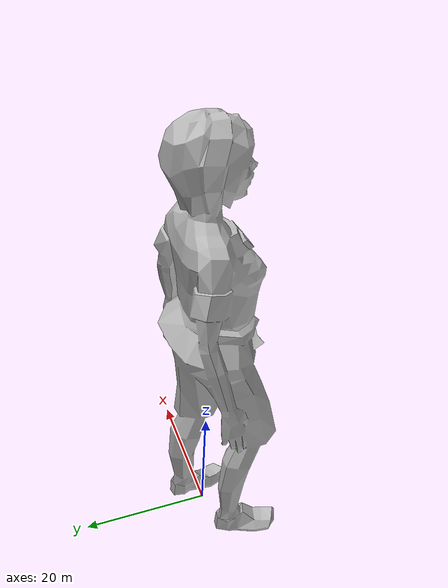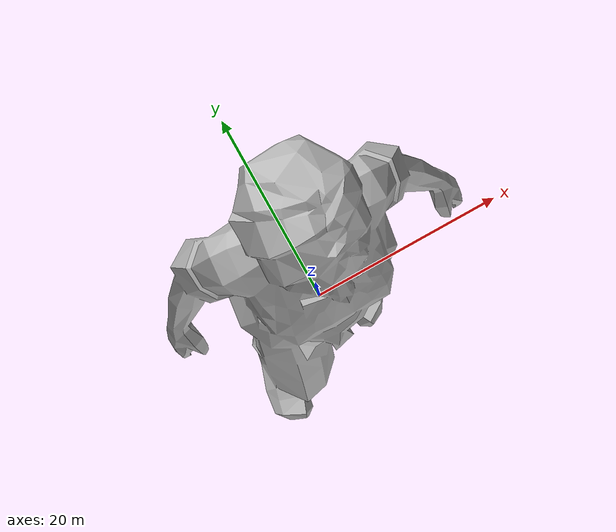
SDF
<?xml version="1.0" ?>
<sdf version="1.7">
  <model name="girl_with_clothes">
    <static>true</static>

    <link name="link">
      <visual name="visual">
        <geometry>
          <mesh>
            <uri>model://girl_with_clothes/girl_with_clothes._worker_set.dae</uri>
            <scale>0.60 0.60 0.60</scale>
          </mesh>
        </geometry>
      </visual>

      <collision name="collision">
        <geometry>
          <mesh>
            <uri>model://girl_with_clothes/girl_with_clothes._worker_set.dae</uri>
          </mesh>
        </geometry>
      </collision>
    </link>
  </model>
</sdf>
